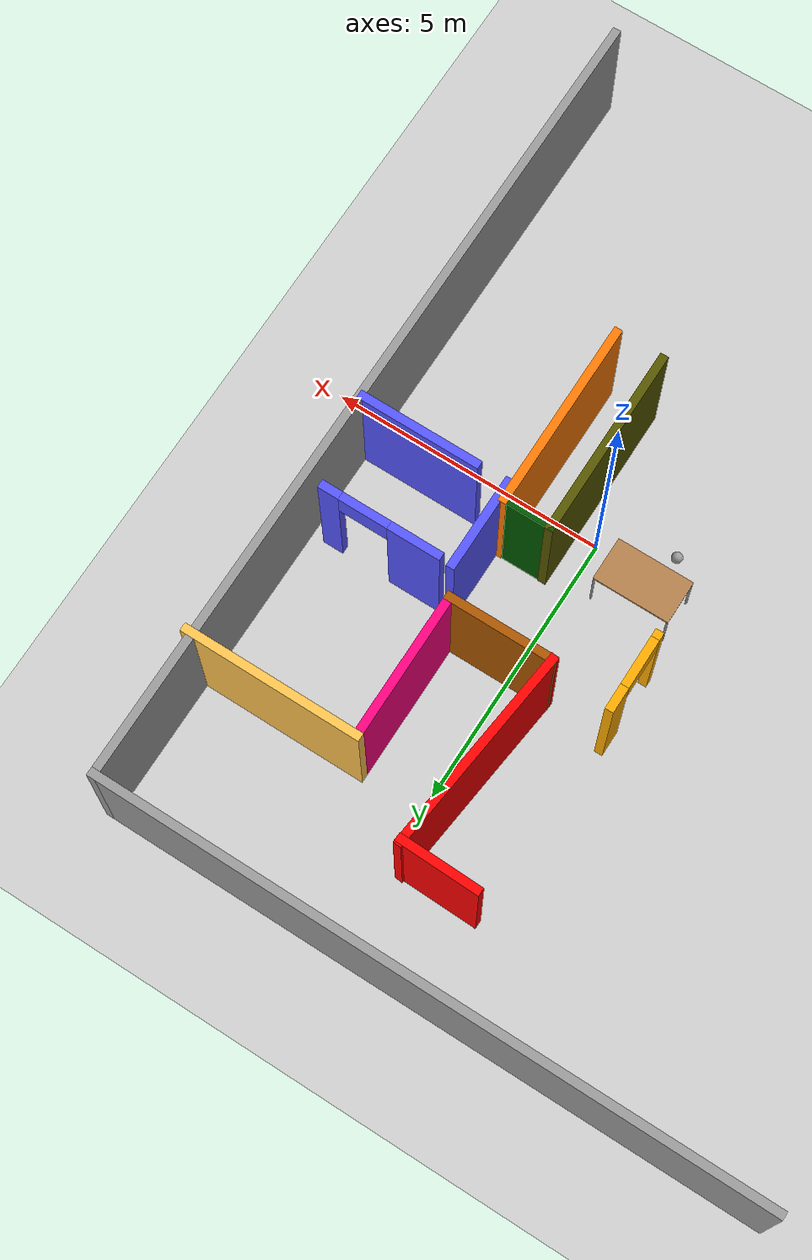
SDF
<sdf version="1.6">
 <world name="default">
  <model name="ground_plane">
   <static>1</static>
   <link name="link">
    <collision name="collision">
     <geometry><plane><normal>0 0 1</normal><size>100 100</size></plane></geometry>
     <surface><friction><ode><mu>100</mu><mu2>50</mu2></ode></friction></surface>
    </collision>
    <visual name="visual">
     <cast_shadows>0</cast_shadows>
     <geometry><plane><normal>0 0 1</normal><size>100 100</size></plane></geometry>
     <material>
      <script><uri>file://media/materials/scripts/gazebo.material</uri><name>Gazebo/Grey</name></script>
     </material>
    </visual>
   </link>
  </model>
  <model name="try_example">
   <link name="Wall_11">
    <pose>4.4301 4.9191 0 0 -0 3.14159</pose>
    <visual name="Wall_11_Visual">
     <pose>0 0 1.25 0 -0 0</pose>
     <geometry><box><size>3.25 0.15 2.5</size></box></geometry>
     <material>
      <script><uri>file://media/materials/scripts/gazebo.material</uri><name>Gazebo/Grey</name></script>
      <ambient>1 0.764706 0.305882 1</ambient>
      <diffuse>0.7 0.7 0.7 1</diffuse>
      <specular>0.01 0.01 0.01 1</specular>
      <emissive>0 0 0 1</emissive>
     </material>
    </visual>
    <collision name="Wall_11_Collision">
     <pose>0 0 1.25 0 -0 0</pose>
     <geometry><box><size>3.25 0.15 2.5</size></box></geometry>
     <surface>
      <friction>
       <ode><mu>1</mu><mu2>1</mu2><fdir1>0 0 0</fdir1><slip1>0</slip1><slip2>0</slip2></ode>
       <torsional>
        <coefficient>1</coefficient>
        <patch_radius>0</patch_radius>
        <surface_radius>0</surface_radius>
        <use_patch_radius>1</use_patch_radius>
        <ode><slip>0</slip></ode>
       </torsional>
      </friction>
      <bounce><restitution_coefficient>0</restitution_coefficient><threshold>1e+06</threshold></bounce>
      <contact>
       <collide_without_contact>0</collide_without_contact>
       <collide_without_contact_bitmask>1</collide_without_contact_bitmask>
       <collide_bitmask>1</collide_bitmask>
       <ode>
        <soft_cfm>0</soft_cfm>
        <soft_erp>0.2</soft_erp>
        <kp>1e+13</kp>
        <kd>1</kd>
        <max_vel>0.01</max_vel>
        <min_depth>0</min_depth>
       </ode>
       <bullet>
        <split_impulse>1</split_impulse>
        <split_impulse_penetration_threshold>-0.01</split_impulse_penetration_threshold>
        <soft_cfm>0</soft_cfm>
        <soft_erp>0.2</soft_erp>
        <kp>1e+13</kp>
        <kd>1</kd>
       </bullet>
      </contact>
     </surface>
    </collision>
   </link>
   <link name="Wall_12">
    <pose>2.8801 3.6191 0 0 0 -1.5708</pose>
    <visual name="Wall_12_Visual">
     <pose>0 0 1.25 0 -0 0</pose>
     <geometry><box><size>2.75 0.15 2.5</size></box></geometry>
     <material>
      <script><uri>file://media/materials/scripts/gazebo.material</uri><name>Gazebo/Grey</name></script>
      <ambient>1 0 0.498039 1</ambient>
      <diffuse>0.7 0.7 0.7 1</diffuse>
      <specular>0.01 0.01 0.01 1</specular>
      <emissive>0 0 0 1</emissive>
     </material>
    </visual>
    <collision name="Wall_12_Collision">
     <pose>0 0 1.25 0 -0 0</pose>
     <geometry><box><size>2.75 0.15 2.5</size></box></geometry>
     <surface>
      <friction>
       <ode><mu>1</mu><mu2>1</mu2><fdir1>0 0 0</fdir1><slip1>0</slip1><slip2>0</slip2></ode>
       <torsional>
        <coefficient>1</coefficient>
        <patch_radius>0</patch_radius>
        <surface_radius>0</surface_radius>
        <use_patch_radius>1</use_patch_radius>
        <ode><slip>0</slip></ode>
       </torsional>
      </friction>
      <bounce><restitution_coefficient>0</restitution_coefficient><threshold>1e+06</threshold></bounce>
      <contact>
       <collide_without_contact>0</collide_without_contact>
       <collide_without_contact_bitmask>1</collide_without_contact_bitmask>
       <collide_bitmask>1</collide_bitmask>
       <ode>
        <soft_cfm>0</soft_cfm>
        <soft_erp>0.2</soft_erp>
        <kp>1e+13</kp>
        <kd>1</kd>
        <max_vel>0.01</max_vel>
        <min_depth>0</min_depth>
       </ode>
       <bullet>
        <split_impulse>1</split_impulse>
        <split_impulse_penetration_threshold>-0.01</split_impulse_penetration_threshold>
        <soft_cfm>0</soft_cfm>
        <soft_erp>0.2</soft_erp>
        <kp>1e+13</kp>
        <kd>1</kd>
       </bullet>
      </contact>
     </surface>
    </collision>
   </link>
   <link name="Wall_13">
    <pose>1.9551 2.3191 0 0 -0 3.14159</pose>
    <visual name="Wall_13_Visual">
     <pose>0 0 1.25 0 -0 0</pose>
     <geometry><box><size>2 0.15 2.5</size></box></geometry>
     <material>
      <script><uri>file://media/materials/scripts/gazebo.material</uri><name>Gazebo/Grey</name></script>
      <ambient>0.666667 0.333333 0 1</ambient>
      <diffuse>0.7 0.7 0.7 1</diffuse>
      <specular>0.01 0.01 0.01 1</specular>
      <emissive>0 0 0 1</emissive>
     </material>
    </visual>
    <collision name="Wall_13_Collision">
     <pose>0 0 1.25 0 -0 0</pose>
     <geometry><box><size>2 0.15 2.5</size></box></geometry>
     <surface>
      <friction>
       <ode><mu>1</mu><mu2>1</mu2><fdir1>0 0 0</fdir1><slip1>0</slip1><slip2>0</slip2></ode>
       <torsional>
        <coefficient>1</coefficient>
        <patch_radius>0</patch_radius>
        <surface_radius>0</surface_radius>
        <use_patch_radius>1</use_patch_radius>
        <ode><slip>0</slip></ode>
       </torsional>
      </friction>
      <bounce><restitution_coefficient>0</restitution_coefficient><threshold>1e+06</threshold></bounce>
      <contact>
       <collide_without_contact>0</collide_without_contact>
       <collide_without_contact_bitmask>1</collide_without_contact_bitmask>
       <collide_bitmask>1</collide_bitmask>
       <ode>
        <soft_cfm>0</soft_cfm>
        <soft_erp>0.2</soft_erp>
        <kp>1e+13</kp>
        <kd>1</kd>
        <max_vel>0.01</max_vel>
        <min_depth>0</min_depth>
       </ode>
       <bullet>
        <split_impulse>1</split_impulse>
        <split_impulse_penetration_threshold>-0.01</split_impulse_penetration_threshold>
        <soft_cfm>0</soft_cfm>
        <soft_erp>0.2</soft_erp>
        <kp>1e+13</kp>
        <kd>1</kd>
       </bullet>
      </contact>
     </surface>
    </collision>
   </link>
   <link name="Wall_14">
    <pose>1.24117 4.12732 0 0 -0 1.45459</pose>
    <visual name="Wall_14_Visual">
     <pose>0 0 1.25 0 -0 0</pose>
     <geometry><box><size>3.79099 0.15 2.5</size></box></geometry>
     <material>
      <script><uri>file://media/materials/scripts/gazebo.material</uri><name>Gazebo/Grey</name></script>
      <ambient>1 0 0 1</ambient>
      <diffuse>0.7 0.7 0.7 1</diffuse>
      <specular>0.01 0.01 0.01 1</specular>
      <emissive>0 0 0 1</emissive>
     </material>
    </visual>
    <collision name="Wall_14_Collision">
     <pose>0 0 1.25 0 -0 0</pose>
     <geometry><box><size>3.79099 0.15 2.5</size></box></geometry>
     <surface>
      <friction>
       <ode><mu>1</mu><mu2>1</mu2><fdir1>0 0 0</fdir1><slip1>0</slip1><slip2>0</slip2></ode>
       <torsional>
        <coefficient>1</coefficient>
        <patch_radius>0</patch_radius>
        <surface_radius>0</surface_radius>
        <use_patch_radius>1</use_patch_radius>
        <ode><slip>0</slip></ode>
       </torsional>
      </friction>
      <bounce><restitution_coefficient>0</restitution_coefficient><threshold>1e+06</threshold></bounce>
      <contact>
       <collide_without_contact>0</collide_without_contact>
       <collide_without_contact_bitmask>1</collide_without_contact_bitmask>
       <collide_bitmask>1</collide_bitmask>
       <ode>
        <soft_cfm>0</soft_cfm>
        <soft_erp>0.2</soft_erp>
        <kp>1e+13</kp>
        <kd>1</kd>
        <max_vel>0.01</max_vel>
        <min_depth>0</min_depth>
       </ode>
       <bullet>
        <split_impulse>1</split_impulse>
        <split_impulse_penetration_threshold>-0.01</split_impulse_penetration_threshold>
        <soft_cfm>0</soft_cfm>
        <soft_erp>0.2</soft_erp>
        <kp>1e+13</kp>
        <kd>1</kd>
       </bullet>
      </contact>
     </surface>
    </collision>
   </link>
   <link name="Wall_15">
    <pose>0.777248 5.91794 0 0 -0 3.11554</pose>
    <visual name="Wall_15_Visual">
     <pose>0 0 1.25 0 -0 0</pose>
     <geometry><box><size>1.50046 0.15 2.5</size></box></geometry>
     <material>
      <script><uri>file://media/materials/scripts/gazebo.material</uri><name>Gazebo/Grey</name></script>
      <ambient>1 0 0 1</ambient>
      <diffuse>0.7 0.7 0.7 1</diffuse>
      <specular>0.01 0.01 0.01 1</specular>
      <emissive>0 0 0 1</emissive>
     </material>
    </visual>
    <collision name="Wall_15_Collision">
     <pose>0 0 1.25 0 -0 0</pose>
     <geometry><box><size>1.50046 0.15 2.5</size></box></geometry>
     <surface>
      <friction>
       <ode><mu>1</mu><mu2>1</mu2><fdir1>0 0 0</fdir1><slip1>0</slip1><slip2>0</slip2></ode>
       <torsional>
        <coefficient>1</coefficient>
        <patch_radius>0</patch_radius>
        <surface_radius>0</surface_radius>
        <use_patch_radius>1</use_patch_radius>
        <ode><slip>0</slip></ode>
       </torsional>
      </friction>
      <bounce><restitution_coefficient>0</restitution_coefficient><threshold>1e+06</threshold></bounce>
      <contact>
       <collide_without_contact>0</collide_without_contact>
       <collide_without_contact_bitmask>1</collide_without_contact_bitmask>
       <collide_bitmask>1</collide_bitmask>
       <ode>
        <soft_cfm>0</soft_cfm>
        <soft_erp>0.2</soft_erp>
        <kp>1e+13</kp>
        <kd>1</kd>
        <max_vel>0.01</max_vel>
        <min_depth>0</min_depth>
       </ode>
       <bullet>
        <split_impulse>1</split_impulse>
        <split_impulse_penetration_threshold>-0.01</split_impulse_penetration_threshold>
        <soft_cfm>0</soft_cfm>
        <soft_erp>0.2</soft_erp>
        <kp>1e+13</kp>
        <kd>1</kd>
       </bullet>
      </contact>
     </surface>
    </collision>
   </link>
   <link name="Wall_17">
    <pose>4.45382 1.83901 0 0 -0 3.14159</pose>
    <visual name="Wall_17_Visual_0">
     <pose>-0.934537 0 1.25 0 -0 0</pose>
     <geometry><box><size>0.380925 0.15 2.5</size></box></geometry>
     <material>
      <script><uri>file://media/materials/scripts/gazebo.material</uri><name>Gazebo/Grey</name></script>
      <ambient>0.333333 0.333333 1 1</ambient>
      <diffuse>0.7 0.7 0.7 1</diffuse>
      <specular>0.01 0.01 0.01 1</specular>
      <emissive>0 0 0 1</emissive>
     </material>
    </visual>
    <visual name="Wall_17_Visual_1">
     <pose>0.640463 0 1.25 0 -0 0</pose>
     <geometry><box><size>0.969075 0.15 2.5</size></box></geometry>
     <material>
      <script><uri>file://media/materials/scripts/gazebo.material</uri><name>Gazebo/Grey</name></script>
      <ambient>0.333333 0.333333 1 1</ambient>
      <diffuse>0.7 0.7 0.7 1</diffuse>
      <specular>0.01 0.01 0.01 1</specular>
      <emissive>0 0 0 1</emissive>
     </material>
    </visual>
    <visual name="Wall_17_Visual_2">
     <pose>-0.294075 0 2.25 0 -0 0</pose>
     <geometry><box><size>0.9 0.15 0.5</size></box></geometry>
     <material>
      <script><uri>file://media/materials/scripts/gazebo.material</uri><name>Gazebo/Grey</name></script>
      <ambient>0.333333 0.333333 1 1</ambient>
      <diffuse>0.7 0.7 0.7 1</diffuse>
      <specular>0.01 0.01 0.01 1</specular>
      <emissive>0 0 0 1</emissive>
     </material>
    </visual>
    <collision name="Wall_17_Collision_0">
     <pose>-0.934537 0 1.25 0 -0 0</pose>
     <geometry><box><size>0.380925 0.15 2.5</size></box></geometry>
     <surface>
      <friction>
       <ode><mu>1</mu><mu2>1</mu2><fdir1>0 0 0</fdir1><slip1>0</slip1><slip2>0</slip2></ode>
       <torsional>
        <coefficient>1</coefficient>
        <patch_radius>0</patch_radius>
        <surface_radius>0</surface_radius>
        <use_patch_radius>1</use_patch_radius>
        <ode><slip>0</slip></ode>
       </torsional>
      </friction>
      <bounce><restitution_coefficient>0</restitution_coefficient><threshold>1e+06</threshold></bounce>
      <contact>
       <collide_without_contact>0</collide_without_contact>
       <collide_without_contact_bitmask>1</collide_without_contact_bitmask>
       <collide_bitmask>1</collide_bitmask>
       <ode>
        <soft_cfm>0</soft_cfm>
        <soft_erp>0.2</soft_erp>
        <kp>1e+13</kp>
        <kd>1</kd>
        <max_vel>0.01</max_vel>
        <min_depth>0</min_depth>
       </ode>
       <bullet>
        <split_impulse>1</split_impulse>
        <split_impulse_penetration_threshold>-0.01</split_impulse_penetration_threshold>
        <soft_cfm>0</soft_cfm>
        <soft_erp>0.2</soft_erp>
        <kp>1e+13</kp>
        <kd>1</kd>
       </bullet>
      </contact>
     </surface>
    </collision>
    <collision name="Wall_17_Collision_1">
     <pose>0.640463 0 1.25 0 -0 0</pose>
     <geometry><box><size>0.969075 0.15 2.5</size></box></geometry>
     <surface>
      <friction>
       <ode><mu>1</mu><mu2>1</mu2><fdir1>0 0 0</fdir1><slip1>0</slip1><slip2>0</slip2></ode>
       <torsional>
        <coefficient>1</coefficient>
        <patch_radius>0</patch_radius>
        <surface_radius>0</surface_radius>
        <use_patch_radius>1</use_patch_radius>
        <ode><slip>0</slip></ode>
       </torsional>
      </friction>
      <bounce><restitution_coefficient>0</restitution_coefficient><threshold>1e+06</threshold></bounce>
      <contact>
       <collide_without_contact>0</collide_without_contact>
       <collide_without_contact_bitmask>1</collide_without_contact_bitmask>
       <collide_bitmask>1</collide_bitmask>
       <ode>
        <soft_cfm>0</soft_cfm>
        <soft_erp>0.2</soft_erp>
        <kp>1e+13</kp>
        <kd>1</kd>
        <max_vel>0.01</max_vel>
        <min_depth>0</min_depth>
       </ode>
       <bullet>
        <split_impulse>1</split_impulse>
        <split_impulse_penetration_threshold>-0.01</split_impulse_penetration_threshold>
        <soft_cfm>0</soft_cfm>
        <soft_erp>0.2</soft_erp>
        <kp>1e+13</kp>
        <kd>1</kd>
       </bullet>
      </contact>
     </surface>
    </collision>
    <collision name="Wall_17_Collision_2">
     <pose>-0.294075 0 2.25 0 -0 0</pose>
     <geometry><box><size>0.9 0.15 0.5</size></box></geometry>
     <surface>
      <friction>
       <ode><mu>1</mu><mu2>1</mu2><fdir1>0 0 0</fdir1><slip1>0</slip1><slip2>0</slip2></ode>
       <torsional>
        <coefficient>1</coefficient>
        <patch_radius>0</patch_radius>
        <surface_radius>0</surface_radius>
        <use_patch_radius>1</use_patch_radius>
        <ode><slip>0</slip></ode>
       </torsional>
      </friction>
      <bounce><restitution_coefficient>0</restitution_coefficient><threshold>1e+06</threshold></bounce>
      <contact>
       <collide_without_contact>0</collide_without_contact>
       <collide_without_contact_bitmask>1</collide_without_contact_bitmask>
       <collide_bitmask>1</collide_bitmask>
       <ode>
        <soft_cfm>0</soft_cfm>
        <soft_erp>0.2</soft_erp>
        <kp>1e+13</kp>
        <kd>1</kd>
        <max_vel>0.01</max_vel>
        <min_depth>0</min_depth>
       </ode>
       <bullet>
        <split_impulse>1</split_impulse>
        <split_impulse_penetration_threshold>-0.01</split_impulse_penetration_threshold>
        <soft_cfm>0</soft_cfm>
        <soft_erp>0.2</soft_erp>
        <kp>1e+13</kp>
        <kd>1</kd>
       </bullet>
      </contact>
     </surface>
    </collision>
   </link>
   <link name="Wall_18">
    <pose>3.13064 1.04811 0 0 0 -1.5708</pose>
    <visual name="Wall_18_Visual">
     <pose>0 0 1.25 0 -0 0</pose>
     <geometry><box><size>1.75 0.15 2.5</size></box></geometry>
     <material>
      <script><uri>file://media/materials/scripts/gazebo.material</uri><name>Gazebo/Grey</name></script>
      <ambient>0.333333 0.333333 1 1</ambient>
      <diffuse>0.7 0.7 0.7 1</diffuse>
      <specular>0.01 0.01 0.01 1</specular>
      <emissive>0 0 0 1</emissive>
     </material>
    </visual>
    <collision name="Wall_18_Collision">
     <pose>0 0 1.25 0 -0 0</pose>
     <geometry><box><size>1.75 0.15 2.5</size></box></geometry>
     <surface>
      <friction>
       <ode><mu>1</mu><mu2>1</mu2><fdir1>0 0 0</fdir1><slip1>0</slip1><slip2>0</slip2></ode>
       <torsional>
        <coefficient>1</coefficient>
        <patch_radius>0</patch_radius>
        <surface_radius>0</surface_radius>
        <use_patch_radius>1</use_patch_radius>
        <ode><slip>0</slip></ode>
       </torsional>
      </friction>
      <bounce><restitution_coefficient>0</restitution_coefficient><threshold>1e+06</threshold></bounce>
      <contact>
       <collide_without_contact>0</collide_without_contact>
       <collide_without_contact_bitmask>1</collide_without_contact_bitmask>
       <collide_bitmask>1</collide_bitmask>
       <ode>
        <soft_cfm>0</soft_cfm>
        <soft_erp>0.2</soft_erp>
        <kp>1e+13</kp>
        <kd>1</kd>
        <max_vel>0.01</max_vel>
        <min_depth>0</min_depth>
       </ode>
       <bullet>
        <split_impulse>1</split_impulse>
        <split_impulse_penetration_threshold>-0.01</split_impulse_penetration_threshold>
        <soft_cfm>0</soft_cfm>
        <soft_erp>0.2</soft_erp>
        <kp>1e+13</kp>
        <kd>1</kd>
       </bullet>
      </contact>
     </surface>
    </collision>
   </link>
   <link name="Wall_24">
    <pose>4.76828 0.244473 0 0 -0 0</pose>
    <visual name="Wall_24_Visual">
     <pose>0 0 1.25 0 -0 0</pose>
     <geometry><box><size>2.25 0.15 2.5</size></box></geometry>
     <material>
      <script><uri>file://media/materials/scripts/gazebo.material</uri><name>Gazebo/Grey</name></script>
      <ambient>0.333333 0.333333 1 1</ambient>
      <diffuse>0.7 0.7 0.7 1</diffuse>
      <specular>0.01 0.01 0.01 1</specular>
      <emissive>0 0 0 1</emissive>
     </material>
    </visual>
    <collision name="Wall_24_Collision">
     <pose>0 0 1.25 0 -0 0</pose>
     <geometry><box><size>2.25 0.15 2.5</size></box></geometry>
     <surface>
      <friction>
       <ode><mu>1</mu><mu2>1</mu2><fdir1>0 0 0</fdir1><slip1>0</slip1><slip2>0</slip2></ode>
       <torsional>
        <coefficient>1</coefficient>
        <patch_radius>0</patch_radius>
        <surface_radius>0</surface_radius>
        <use_patch_radius>1</use_patch_radius>
        <ode><slip>0</slip></ode>
       </torsional>
      </friction>
      <bounce><restitution_coefficient>0</restitution_coefficient><threshold>1e+06</threshold></bounce>
      <contact>
       <collide_without_contact>0</collide_without_contact>
       <collide_without_contact_bitmask>1</collide_without_contact_bitmask>
       <collide_bitmask>1</collide_bitmask>
       <ode>
        <soft_cfm>0</soft_cfm>
        <soft_erp>0.2</soft_erp>
        <kp>1e+13</kp>
        <kd>1</kd>
        <max_vel>0.01</max_vel>
        <min_depth>0</min_depth>
       </ode>
       <bullet>
        <split_impulse>1</split_impulse>
        <split_impulse_penetration_threshold>-0.01</split_impulse_penetration_threshold>
        <soft_cfm>0</soft_cfm>
        <soft_erp>0.2</soft_erp>
        <kp>1e+13</kp>
        <kd>1</kd>
       </bullet>
      </contact>
     </surface>
    </collision>
   </link>
   <link name="Wall_3">
    <pose>-0.053538 7.54122 0 0 -0 0</pose>
    <visual name="Wall_3_Visual">
     <pose>0 0 1.25 0 -0 0</pose>
     <geometry><box><size>12 0.15 2.5</size></box></geometry>
     <material>
      <script><uri>file://media/materials/scripts/gazebo.material</uri><name>Gazebo/Grey</name></script>
      <ambient>0 0 0 1</ambient>
      <diffuse>0.7 0.7 0.7 1</diffuse>
      <specular>0.01 0.01 0.01 1</specular>
      <emissive>0 0 0 1</emissive>
     </material>
    </visual>
    <collision name="Wall_3_Collision">
     <pose>0 0 1.25 0 -0 0</pose>
     <geometry><box><size>12 0.15 2.5</size></box></geometry>
     <surface>
      <friction>
       <ode><mu>1</mu><mu2>1</mu2><fdir1>0 0 0</fdir1><slip1>0</slip1><slip2>0</slip2></ode>
       <torsional>
        <coefficient>1</coefficient>
        <patch_radius>0</patch_radius>
        <surface_radius>0</surface_radius>
        <use_patch_radius>1</use_patch_radius>
        <ode><slip>0</slip></ode>
       </torsional>
      </friction>
      <bounce><restitution_coefficient>0</restitution_coefficient><threshold>1e+06</threshold></bounce>
      <contact>
       <collide_without_contact>0</collide_without_contact>
       <collide_without_contact_bitmask>1</collide_without_contact_bitmask>
       <collide_bitmask>1</collide_bitmask>
       <ode>
        <soft_cfm>0</soft_cfm>
        <soft_erp>0.2</soft_erp>
        <kp>1e+13</kp>
        <kd>1</kd>
        <max_vel>0.01</max_vel>
        <min_depth>0</min_depth>
       </ode>
       <bullet>
        <split_impulse>1</split_impulse>
        <split_impulse_penetration_threshold>-0.01</split_impulse_penetration_threshold>
        <soft_cfm>0</soft_cfm>
        <soft_erp>0.2</soft_erp>
        <kp>1e+13</kp>
        <kd>1</kd>
       </bullet>
      </contact>
     </surface>
    </collision>
   </link>
   <link name="Wall_35">
    <pose>-0.11058 1.80298 0 0 -0 1.5708</pose>
    <visual name="Wall_35_Visual_0">
     <pose>-0.680114 0 1.25 0 -0 0</pose>
     <geometry><box><size>0.139772 0.15 2.5</size></box></geometry>
     <material>
      <script><uri>file://media/materials/scripts/gazebo.material</uri><name>Gazebo/Grey</name></script>
      <ambient>1 0.666667 0 1</ambient>
      <diffuse>0.7 0.7 0.7 1</diffuse>
      <specular>0.01 0.01 0.01 1</specular>
      <emissive>0 0 0 1</emissive>
     </material>
    </visual>
    <visual name="Wall_35_Visual_1">
     <pose>0.519886 0 1.25 0 -0 0</pose>
     <geometry><box><size>0.460228 0.15 2.5</size></box></geometry>
     <material>
      <script><uri>file://media/materials/scripts/gazebo.material</uri><name>Gazebo/Grey</name></script>
      <ambient>1 0.666667 0 1</ambient>
      <diffuse>0.7 0.7 0.7 1</diffuse>
      <specular>0.01 0.01 0.01 1</specular>
      <emissive>0 0 0 1</emissive>
     </material>
    </visual>
    <visual name="Wall_35_Visual_2">
     <pose>-0.160228 0 2.25 0 -0 0</pose>
     <geometry><box><size>0.9 0.15 0.5</size></box></geometry>
     <material>
      <script><uri>file://media/materials/scripts/gazebo.material</uri><name>Gazebo/Grey</name></script>
      <ambient>1 0.666667 0 1</ambient>
      <diffuse>0.7 0.7 0.7 1</diffuse>
      <specular>0.01 0.01 0.01 1</specular>
      <emissive>0 0 0 1</emissive>
     </material>
    </visual>
    <collision name="Wall_35_Collision_0">
     <pose>-0.680114 0 1.25 0 -0 0</pose>
     <geometry><box><size>0.139772 0.15 2.5</size></box></geometry>
     <surface>
      <friction>
       <ode><mu>1</mu><mu2>1</mu2><fdir1>0 0 0</fdir1><slip1>0</slip1><slip2>0</slip2></ode>
       <torsional>
        <coefficient>1</coefficient>
        <patch_radius>0</patch_radius>
        <surface_radius>0</surface_radius>
        <use_patch_radius>1</use_patch_radius>
        <ode><slip>0</slip></ode>
       </torsional>
      </friction>
      <bounce><restitution_coefficient>0</restitution_coefficient><threshold>1e+06</threshold></bounce>
      <contact>
       <collide_without_contact>0</collide_without_contact>
       <collide_without_contact_bitmask>1</collide_without_contact_bitmask>
       <collide_bitmask>1</collide_bitmask>
       <ode>
        <soft_cfm>0</soft_cfm>
        <soft_erp>0.2</soft_erp>
        <kp>1e+13</kp>
        <kd>1</kd>
        <max_vel>0.01</max_vel>
        <min_depth>0</min_depth>
       </ode>
       <bullet>
        <split_impulse>1</split_impulse>
        <split_impulse_penetration_threshold>-0.01</split_impulse_penetration_threshold>
        <soft_cfm>0</soft_cfm>
        <soft_erp>0.2</soft_erp>
        <kp>1e+13</kp>
        <kd>1</kd>
       </bullet>
      </contact>
     </surface>
    </collision>
    <collision name="Wall_35_Collision_1">
     <pose>0.519886 0 1.25 0 -0 0</pose>
     <geometry><box><size>0.460228 0.15 2.5</size></box></geometry>
     <surface>
      <friction>
       <ode><mu>1</mu><mu2>1</mu2><fdir1>0 0 0</fdir1><slip1>0</slip1><slip2>0</slip2></ode>
       <torsional>
        <coefficient>1</coefficient>
        <patch_radius>0</patch_radius>
        <surface_radius>0</surface_radius>
        <use_patch_radius>1</use_patch_radius>
        <ode><slip>0</slip></ode>
       </torsional>
      </friction>
      <bounce><restitution_coefficient>0</restitution_coefficient><threshold>1e+06</threshold></bounce>
      <contact>
       <collide_without_contact>0</collide_without_contact>
       <collide_without_contact_bitmask>1</collide_without_contact_bitmask>
       <collide_bitmask>1</collide_bitmask>
       <ode>
        <soft_cfm>0</soft_cfm>
        <soft_erp>0.2</soft_erp>
        <kp>1e+13</kp>
        <kd>1</kd>
        <max_vel>0.01</max_vel>
        <min_depth>0</min_depth>
       </ode>
       <bullet>
        <split_impulse>1</split_impulse>
        <split_impulse_penetration_threshold>-0.01</split_impulse_penetration_threshold>
        <soft_cfm>0</soft_cfm>
        <soft_erp>0.2</soft_erp>
        <kp>1e+13</kp>
        <kd>1</kd>
       </bullet>
      </contact>
     </surface>
    </collision>
    <collision name="Wall_35_Collision_2">
     <pose>-0.160228 0 2.25 0 -0 0</pose>
     <geometry><box><size>0.9 0.15 0.5</size></box></geometry>
     <surface>
      <friction>
       <ode><mu>1</mu><mu2>1</mu2><fdir1>0 0 0</fdir1><slip1>0</slip1><slip2>0</slip2></ode>
       <torsional>
        <coefficient>1</coefficient>
        <patch_radius>0</patch_radius>
        <surface_radius>0</surface_radius>
        <use_patch_radius>1</use_patch_radius>
        <ode><slip>0</slip></ode>
       </torsional>
      </friction>
      <bounce><restitution_coefficient>0</restitution_coefficient><threshold>1e+06</threshold></bounce>
      <contact>
       <collide_without_contact>0</collide_without_contact>
       <collide_without_contact_bitmask>1</collide_without_contact_bitmask>
       <collide_bitmask>1</collide_bitmask>
       <ode>
        <soft_cfm>0</soft_cfm>
        <soft_erp>0.2</soft_erp>
        <kp>1e+13</kp>
        <kd>1</kd>
        <max_vel>0.01</max_vel>
        <min_depth>0</min_depth>
       </ode>
       <bullet>
        <split_impulse>1</split_impulse>
        <split_impulse_penetration_threshold>-0.01</split_impulse_penetration_threshold>
        <soft_cfm>0</soft_cfm>
        <soft_erp>0.2</soft_erp>
        <kp>1e+13</kp>
        <kd>1</kd>
       </bullet>
      </contact>
     </surface>
    </collision>
   </link>
   <link name="Wall_4">
    <pose>5.87146 0.031676 0 0 0 -1.5708</pose>
    <visual name="Wall_4_Visual">
     <pose>0 0 1.25 0 -0 0</pose>
     <geometry><box><size>15.1691 0.15 2.5</size></box></geometry>
     <material>
      <script><uri>file://media/materials/scripts/gazebo.material</uri><name>Gazebo/Grey</name></script>
      <ambient>0 0 0 1</ambient>
      <diffuse>0.7 0.7 0.7 1</diffuse>
      <specular>0.01 0.01 0.01 1</specular>
      <emissive>0 0 0 1</emissive>
     </material>
    </visual>
    <collision name="Wall_4_Collision">
     <pose>0 0 1.25 0 -0 0</pose>
     <geometry><box><size>15.1691 0.15 2.5</size></box></geometry>
     <surface>
      <friction>
       <ode><mu>1</mu><mu2>1</mu2><fdir1>0 0 0</fdir1><slip1>0</slip1><slip2>0</slip2></ode>
       <torsional>
        <coefficient>1</coefficient>
        <patch_radius>0</patch_radius>
        <surface_radius>0</surface_radius>
        <use_patch_radius>1</use_patch_radius>
        <ode><slip>0</slip></ode>
       </torsional>
      </friction>
      <bounce><restitution_coefficient>0</restitution_coefficient><threshold>1e+06</threshold></bounce>
      <contact>
       <collide_without_contact>0</collide_without_contact>
       <collide_without_contact_bitmask>1</collide_without_contact_bitmask>
       <collide_bitmask>1</collide_bitmask>
       <ode>
        <soft_cfm>0</soft_cfm>
        <soft_erp>0.2</soft_erp>
        <kp>1e+13</kp>
        <kd>1</kd>
        <max_vel>0.01</max_vel>
        <min_depth>0</min_depth>
       </ode>
       <bullet>
        <split_impulse>1</split_impulse>
        <split_impulse_penetration_threshold>-0.01</split_impulse_penetration_threshold>
        <soft_cfm>0</soft_cfm>
        <soft_erp>0.2</soft_erp>
        <kp>1e+13</kp>
        <kd>1</kd>
       </bullet>
      </contact>
     </surface>
    </collision>
   </link>
   <link name="Wall_55">
    <pose>2.1814 -1.16622 0 0 -0 1.5708</pose>
    <visual name="Wall_55_Visual">
     <pose>0 0 1.25 0 -0 0</pose>
     <geometry><box><size>3.5 0.15 2.5</size></box></geometry>
     <material>
      <script><uri>file://media/materials/scripts/gazebo.material</uri><name>Gazebo/Grey</name></script>
      <ambient>0.333333 0.333333 0 1</ambient>
      <diffuse>0.7 0.7 0.7 1</diffuse>
      <specular>0.01 0.01 0.01 1</specular>
      <emissive>0 0 0 1</emissive>
     </material>
    </visual>
    <collision name="Wall_55_Collision">
     <pose>0 0 1.25 0 -0 0</pose>
     <geometry><box><size>3.5 0.15 2.5</size></box></geometry>
     <surface>
      <friction>
       <ode><mu>1</mu><mu2>1</mu2><fdir1>0 0 0</fdir1><slip1>0</slip1><slip2>0</slip2></ode>
       <torsional>
        <coefficient>1</coefficient>
        <patch_radius>0</patch_radius>
        <surface_radius>0</surface_radius>
        <use_patch_radius>1</use_patch_radius>
        <ode><slip>0</slip></ode>
       </torsional>
      </friction>
      <bounce><restitution_coefficient>0</restitution_coefficient><threshold>1e+06</threshold></bounce>
      <contact>
       <collide_without_contact>0</collide_without_contact>
       <collide_without_contact_bitmask>1</collide_without_contact_bitmask>
       <collide_bitmask>1</collide_bitmask>
       <ode>
        <soft_cfm>0</soft_cfm>
        <soft_erp>0.2</soft_erp>
        <kp>1e+13</kp>
        <kd>1</kd>
        <max_vel>0.01</max_vel>
        <min_depth>0</min_depth>
       </ode>
       <bullet>
        <split_impulse>1</split_impulse>
        <split_impulse_penetration_threshold>-0.01</split_impulse_penetration_threshold>
        <soft_cfm>0</soft_cfm>
        <soft_erp>0.2</soft_erp>
        <kp>1e+13</kp>
        <kd>1</kd>
       </bullet>
      </contact>
     </surface>
    </collision>
   </link>
   <link name="Wall_56">
    <pose>2.62687 0.495726 0 0 -0 0</pose>
    <visual name="Wall_56_Visual">
     <pose>0 0 1.25 0 -0 0</pose>
     <geometry><box><size>1 0.15 2.5</size></box></geometry>
     <material>
      <script><uri>file://media/materials/scripts/gazebo.material</uri><name>Gazebo/Grey</name></script>
      <ambient>0 0.333333 0 1</ambient>
      <diffuse>0.7 0.7 0.7 1</diffuse>
      <specular>0.01 0.01 0.01 1</specular>
      <emissive>0 0 0 1</emissive>
     </material>
    </visual>
    <collision name="Wall_56_Collision">
     <pose>0 0 1.25 0 -0 0</pose>
     <geometry><box><size>1 0.15 2.5</size></box></geometry>
     <surface>
      <friction>
       <ode><mu>1</mu><mu2>1</mu2><fdir1>0 0 0</fdir1><slip1>0</slip1><slip2>0</slip2></ode>
       <torsional>
        <coefficient>1</coefficient>
        <patch_radius>0</patch_radius>
        <surface_radius>0</surface_radius>
        <use_patch_radius>1</use_patch_radius>
        <ode><slip>0</slip></ode>
       </torsional>
      </friction>
      <bounce><restitution_coefficient>0</restitution_coefficient><threshold>1e+06</threshold></bounce>
      <contact>
       <collide_without_contact>0</collide_without_contact>
       <collide_without_contact_bitmask>1</collide_without_contact_bitmask>
       <collide_bitmask>1</collide_bitmask>
       <ode>
        <soft_cfm>0</soft_cfm>
        <soft_erp>0.2</soft_erp>
        <kp>1e+13</kp>
        <kd>1</kd>
        <max_vel>0.01</max_vel>
        <min_depth>0</min_depth>
       </ode>
       <bullet>
        <split_impulse>1</split_impulse>
        <split_impulse_penetration_threshold>-0.01</split_impulse_penetration_threshold>
        <soft_cfm>0</soft_cfm>
        <soft_erp>0.2</soft_erp>
        <kp>1e+13</kp>
        <kd>1</kd>
       </bullet>
      </contact>
     </surface>
    </collision>
   </link>
   <link name="Wall_57">
    <pose>3.0314 -1.16622 0 0 0 -1.5708</pose>
    <visual name="Wall_57_Visual">
     <pose>0 0 1.25 0 -0 0</pose>
     <geometry><box><size>3.5 0.15 2.5</size></box></geometry>
     <material>
      <script><uri>file://media/materials/scripts/gazebo.material</uri><name>Gazebo/Grey</name></script>
      <ambient>0.996078 0.47451 0.0196078 1</ambient>
      <diffuse>0.7 0.7 0.7 1</diffuse>
      <specular>0.01 0.01 0.01 1</specular>
      <emissive>0 0 0 1</emissive>
     </material>
    </visual>
    <collision name="Wall_57_Collision">
     <pose>0 0 1.25 0 -0 0</pose>
     <geometry><box><size>3.5 0.15 2.5</size></box></geometry>
     <surface>
      <friction>
       <ode><mu>1</mu><mu2>1</mu2><fdir1>0 0 0</fdir1><slip1>0</slip1><slip2>0</slip2></ode>
       <torsional>
        <coefficient>1</coefficient>
        <patch_radius>0</patch_radius>
        <surface_radius>0</surface_radius>
        <use_patch_radius>1</use_patch_radius>
        <ode><slip>0</slip></ode>
       </torsional>
      </friction>
      <bounce><restitution_coefficient>0</restitution_coefficient><threshold>1e+06</threshold></bounce>
      <contact>
       <collide_without_contact>0</collide_without_contact>
       <collide_without_contact_bitmask>1</collide_without_contact_bitmask>
       <collide_bitmask>1</collide_bitmask>
       <ode>
        <soft_cfm>0</soft_cfm>
        <soft_erp>0.2</soft_erp>
        <kp>1e+13</kp>
        <kd>1</kd>
        <max_vel>0.01</max_vel>
        <min_depth>0</min_depth>
       </ode>
       <bullet>
        <split_impulse>1</split_impulse>
        <split_impulse_penetration_threshold>-0.01</split_impulse_penetration_threshold>
        <soft_cfm>0</soft_cfm>
        <soft_erp>0.2</soft_erp>
        <kp>1e+13</kp>
        <kd>1</kd>
       </bullet>
      </contact>
     </surface>
    </collision>
   </link>
   <static>1</static>
   <pose>-1.73418 0.413361 0 0 -0 0</pose>
  </model>
  <model name="table">
   <static>0</static>
   <link name="link">
    <collision name="surface">
     <pose>0 0 1 0 -0 0</pose>
     <geometry><box><size>1.5 0.8 0.03</size></box></geometry>
     <surface><friction><ode><mu>0.6</mu><mu2>0.6</mu2></ode></friction></surface>
    </collision>
    <visual name="visual1">
     <pose>0 0 1 0 -0 0</pose>
     <geometry><box><size>1.4 0.8 0.04</size></box></geometry>
     <material>
      <script><uri>file://media/materials/scripts/gazebo.material</uri><name>Gazebo/Wood</name></script>
     </material>
    </visual>
    <collision name="front_left_leg">
     <pose>0.68 0.38 0.5 0 -0 0</pose>
     <geometry><cylinder><radius>0.02</radius><length>1</length></cylinder></geometry>
    </collision>
    <visual name="front_left_leg">
     <pose>0.68 0.38 0.5 0 -0 0</pose>
     <geometry><cylinder><radius>0.02</radius><length>1</length></cylinder></geometry>
     <material>
      <script><uri>file://media/materials/scripts/gazebo.material</uri><name>Gazebo/Grey</name></script>
     </material>
    </visual>
    <collision name="front_right_leg">
     <pose>0.68 -0.38 0.5 0 -0 0</pose>
     <geometry><cylinder><radius>0.02</radius><length>1</length></cylinder></geometry>
    </collision>
    <visual name="front_right_leg">
     <pose>0.68 -0.38 0.5 0 -0 0</pose>
     <geometry><cylinder><radius>0.02</radius><length>1</length></cylinder></geometry>
     <material>
      <script><uri>file://media/materials/scripts/gazebo.material</uri><name>Gazebo/Grey</name></script>
     </material>
    </visual>
    <collision name="back_right_leg">
     <pose>-0.68 -0.38 0.5 0 -0 0</pose>
     <geometry><cylinder><radius>0.02</radius><length>1</length></cylinder></geometry>
    </collision>
    <visual name="back_right_leg">
     <pose>-0.68 -0.38 0.5 0 -0 0</pose>
     <geometry><cylinder><radius>0.02</radius><length>1</length></cylinder></geometry>
     <material>
      <script><uri>file://media/materials/scripts/gazebo.material</uri><name>Gazebo/Grey</name></script>
     </material>
    </visual>
    <collision name="back_left_leg">
     <pose>-0.68 0.38 0.5 0 -0 0</pose>
     <geometry><cylinder><radius>0.02</radius><length>1</length></cylinder></geometry>
    </collision>
    <visual name="back_left_leg">
     <pose>-0.68 0.38 0.5 0 -0 0</pose>
     <geometry><cylinder><radius>0.02</radius><length>1</length></cylinder></geometry>
     <material>
      <script><uri>file://media/materials/scripts/gazebo.material</uri><name>Gazebo/Grey</name></script>
     </material>
    </visual>
    <inertial>
     <inertia><ixx>1</ixx><ixy>0</ixy><ixz>0</ixz><iyy>1</iyy><iyz>0</iyz><izz>1</izz></inertia>
     <mass>1</mass>
    </inertial>
   </link>
   <pose>-1.05114 0.407467 -9e-06 0 -1e-06 0</pose>
  </model>
  <model name="my_ball">
   <link name="link">
    <inertial>
     <mass>1</mass>
     <inertia><ixx>0.1</ixx><ixy>0</ixy><ixz>0</ixz><iyy>0.1</iyy><iyz>0</iyz><izz>0.1</izz></inertia>
    </inertial>
    <visual name="visual">
     <geometry><sphere><radius>0.1</radius></sphere></geometry>
     <material>
      <script><name>Gazebo/Grey</name><uri>file://media/materials/scripts/gazebo.material</uri></script>
      <ambient>1 1 1 1</ambient>
      <diffuse>1 1 1 1</diffuse>
      <specular>0.1 1 1 1</specular>
      <emissive>1 1 1 1</emissive>
      <shader type="vertex"><normal_map>__default__</normal_map></shader>
     </material>
    </visual>
    <collision name="collision">
     <geometry><sphere><radius>0.1</radius></sphere></geometry>
     <surface>
      <friction>
       <ode><mu>1</mu><mu2>1</mu2><fdir1>0 0 0</fdir1><slip1>0</slip1><slip2>0</slip2></ode>
       <torsional>
        <coefficient>1</coefficient>
        <patch_radius>0</patch_radius>
        <surface_radius>0</surface_radius>
        <use_patch_radius>1</use_patch_radius>
        <ode><slip>0</slip></ode>
       </torsional>
      </friction>
      <bounce><restitution_coefficient>0</restitution_coefficient><threshold>1e+06</threshold></bounce>
      <contact>
       <collide_without_contact>0</collide_without_contact>
       <collide_without_contact_bitmask>1</collide_without_contact_bitmask>
       <collide_bitmask>1</collide_bitmask>
       <ode>
        <soft_cfm>0</soft_cfm>
        <soft_erp>0.2</soft_erp>
        <kp>1e+13</kp>
        <kd>1</kd>
        <max_vel>0.01</max_vel>
        <min_depth>0</min_depth>
       </ode>
       <bullet>
        <split_impulse>1</split_impulse>
        <split_impulse_penetration_threshold>-0.01</split_impulse_penetration_threshold>
        <soft_cfm>0</soft_cfm>
        <soft_erp>0.2</soft_erp>
        <kp>1e+13</kp>
        <kd>1</kd>
       </bullet>
      </contact>
     </surface>
    </collision>
   </link>
   <static>0</static>
   <pose>-1.21966 -0.541786 0.1 0 -0 0</pose>
  </model>
 </world>
</sdf>
